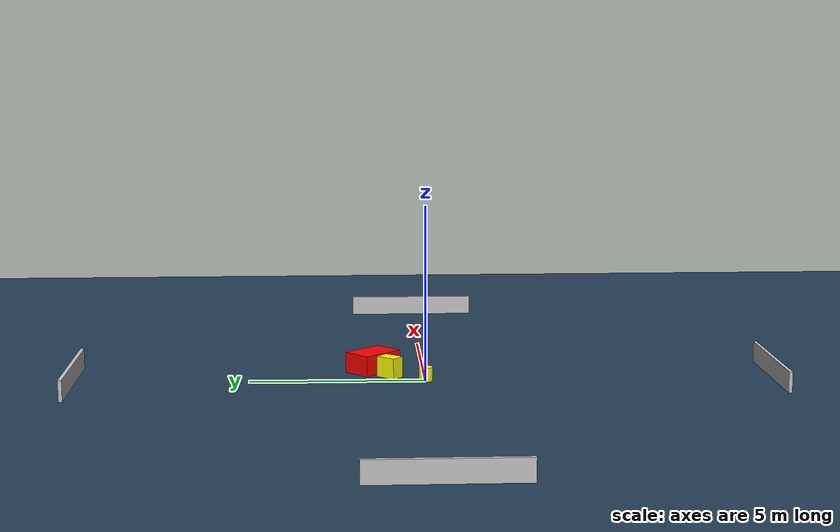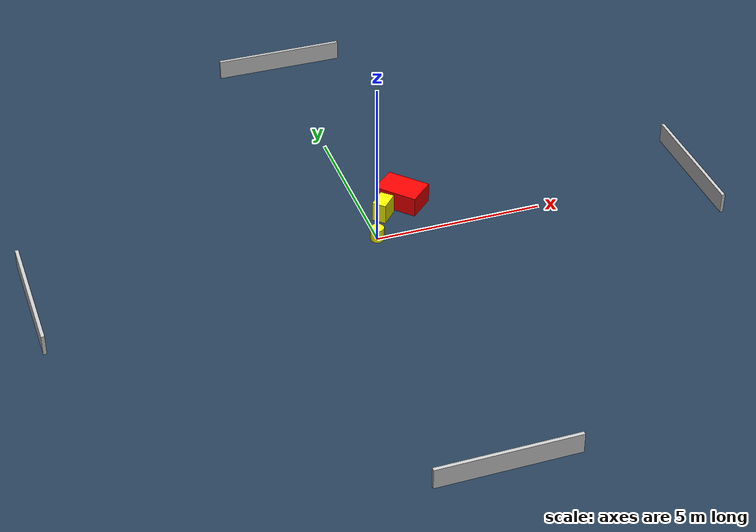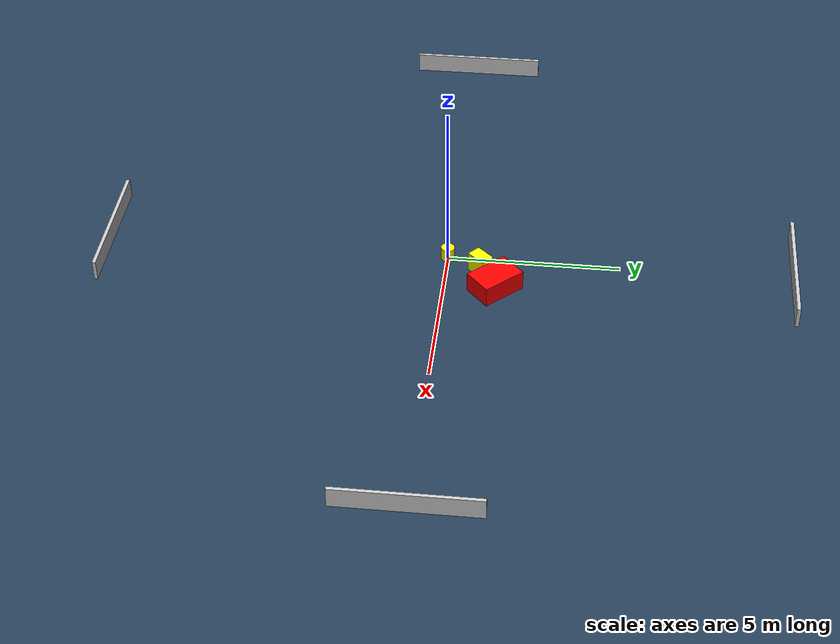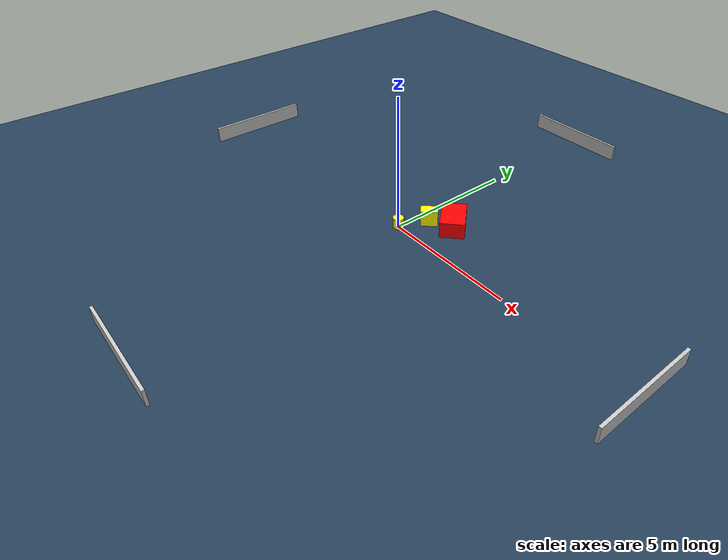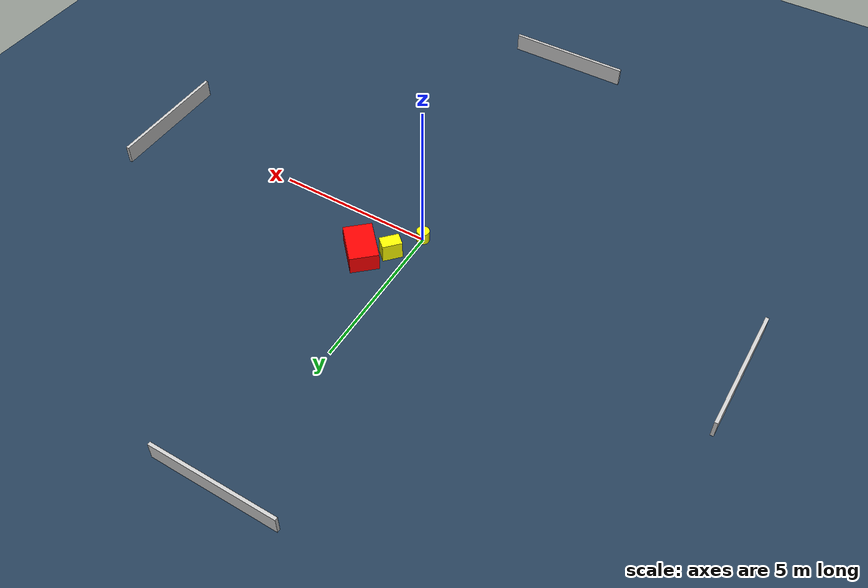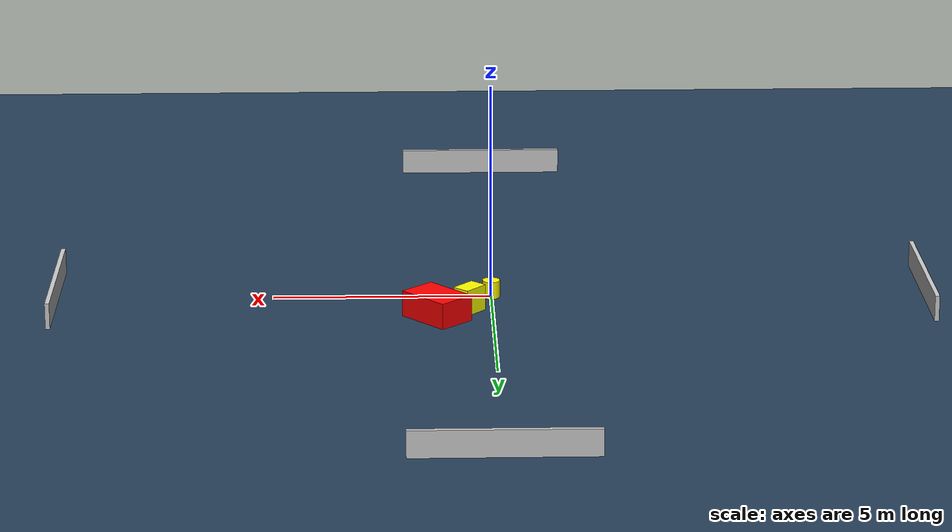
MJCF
<?xml version="1.0" ?>
<mujoco model="generated_environment">
  <option timestep="0.01" integrator="RK4" cone="elliptic"/>
  <default>
    <geom density="1"/>
  </default>
  <asset>
    <texture builtin="gradient" height="3072" name="skybox" rgb1="0.3 0.5 0.7" rgb2="0 0 0" type="skybox" width="512"/>
    <texture builtin="checker" height="300" name="groundplane" rgb1="0.2 0.3 0.4" rgb2="0.1 0.2 0.3" type="2d" width="300"/>
    <material name="groundplane" reflectance="0.2" texrepeat="5 5" texture="groundplane"/>
  </asset>
  <worldbody>
    <light dir="0 0 -1" directional="true" pos="0 0 1.5"/>
    <geom condim="3" friction="0.5 0.005 0.001" material="groundplane" name="floor" pos="0 0 0" size="0 0 0.05" type="plane"/>
    <body name="walls">
      <geom name="wall_1" condim="4" pos="-10.0 0.0 0.3" rgba="0.800000011920929 0.800000011920929 0.800000011920929 1.0" size="0.05 2.0 0.3" type="box"/>
      <geom name="wall_2" condim="4" pos="10.0 0.0 0.3" rgba="0.800000011920929 0.800000011920929 0.800000011920929 1.0" size="0.05 2.0 0.3" type="box"/>
      <geom name="wall_3" condim="4" pos="0.0 -10.0 0.3" rgba="0.800000011920929 0.800000011920929 0.800000011920929 1.0" size="2.0 0.05 0.3" type="box"/>
      <geom name="wall_4" condim="4" pos="0.0 10.0 0.3" rgba="0.800000011920929 0.800000011920929 0.800000011920929 1.0" size="2.0 0.05 0.3" type="box"/>
    </body>
    <body name="robot">
      <joint name="joint_x" type="slide" pos="0 0 0" axis="1 0 0"/>
      <joint name="joint_y" type="slide" pos="0 0 0" axis="0 1 0"/>
      <geom name="robot" type="cylinder" pos="0.0 0.0 0.2" size="0.2 0.2 0.0" mass="5.0" friction="1.0 0.005 0.0001" condim="4" rgba="1.0 1.0 0.0 1.0"/>
    </body>
    <body name="obstacle_1_movable">
      <geom name="obstacle_1_movable" condim="4" pos="0.5211120766240541 1.003138152823929 0.3" euler="0 0 317.627429275032" friction="0.0 0.005 0.001" rgba="1.0 1.0 0.0 1.0" size="0.20840889035513488 0.30891157875593267 0.3" type="box" mass="0.1"/>
      <joint type="free"/>
    </body>
    <body name="obstacle_2_static">
      <geom name="obstacle_2_static" condim="4" pos="1.2695813618131042 1.4812309613071684 0.3" euler="0 0 312.6816455460298" friction="0.0 0.005 0.001" rgba="1.0 0.0 0.0 1.0" size="0.6606192184331161 0.44903449216970676 0.3" type="box"/>
    </body>
  </worldbody>
  <actuator>
    <motor name="actuator_x" joint="joint_x" gear="1" ctrlrange="-1 1"/>
    <motor name="actuator_y" joint="joint_y" gear="1" ctrlrange="-1 1"/>
  </actuator>
</mujoco>
